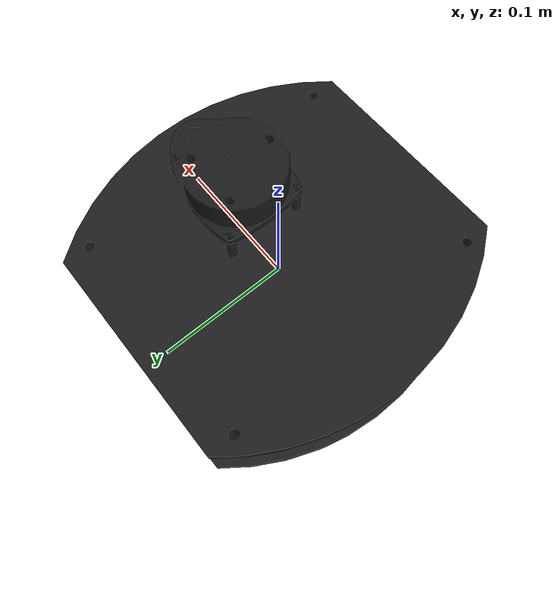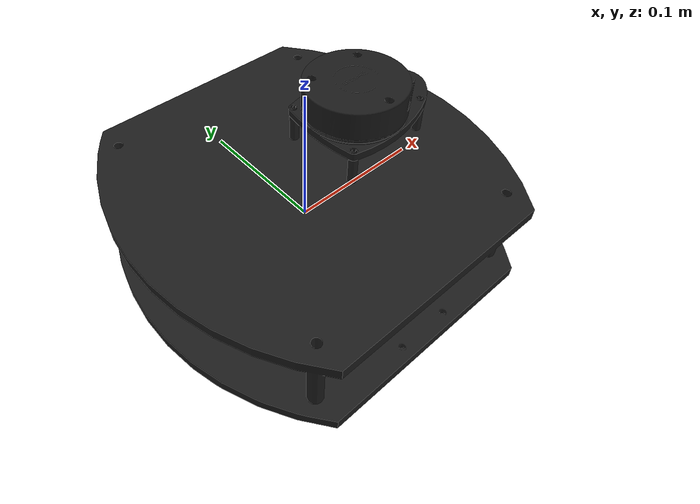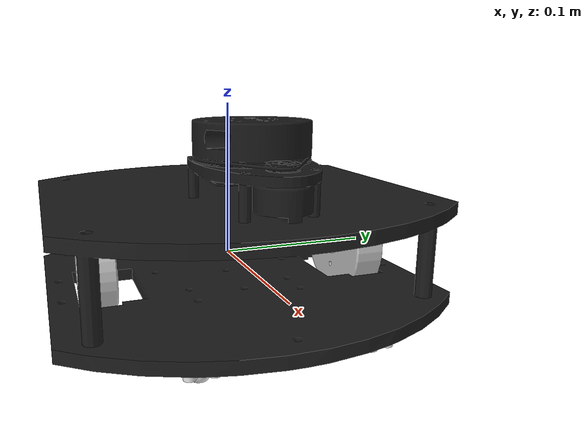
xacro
<?xml version="1.0" encoding="utf-8"?>
<robot
  name="Simplified Assembly">

  <link name="base_link"></link>

  <joint name="chassis_joint" type="fixed">
        <parent link ="base_link"/>
        <child link="chassis_link"/>
        <origin xyz="0 0 -0.0155"/>
    </joint>

  <link
    name="chassis_link">
    <inertial>
      <origin
        xyz="0.00018354 -4.7554E-17 0.026293"
        rpy="0 0 0" />
      <mass
        value="0.82316" />
      <inertia
        ixx="0.0034397"
        ixy="-1.2451E-18"
        ixz="-1.9509E-06"
        iyy="0.0037743"
        iyz="3.903E-21"
        izz="0.0071801" />
    </inertial>
    <visual>
      <origin
        xyz="0 0 0"
        rpy="0 0 0" />
      <geometry>
        <mesh
          filename="file:///home/steph/dev_ws/src/rpibot/meshes/chassis_link.STL" />
      </geometry>
      <material
        name="">
        <color
          rgba="0.11373 0.11373 0.11373 1" />
      </material>
    </visual>
    <collision>
      <origin
        xyz="0 0 0"
        rpy="0 0 0" />
      <geometry>
        <mesh
          filename="file:///home/steph/dev_ws/src/rpibot/meshes/chassis_link.STL" />
      </geometry>
    </collision>
  </link>
  <link
    name="left_wheel_link">
    <inertial>
      <origin
        xyz="1.8238E-18 6.9389E-18 -0.0026884"
        rpy="0 0 0" />
      <mass
        value="0.047296" />
      <inertia
        ixx="2.1191E-05"
        ixy="9.6271E-24"
        ixz="-1.6895E-21"
        iyy="2.1191E-05"
        iyz="-4.4638E-21"
        izz="3.9913E-05" />
    </inertial>
    <visual>
      <origin
        xyz="0 0 0"
        rpy="0 0 0" />
      <geometry>
        <mesh
          filename="file:///home/steph/dev_ws/src/rpibot/meshes/left_wheel_link.STL" />
      </geometry>
      <material
        name="">
        <color
          rgba="0.75294 0.75294 0.75294 1" />
      </material>
    </visual>
    <collision>
      <origin
        xyz="0 0 0"
        rpy="0 0 0" />
      <geometry>
        <mesh
          filename="file:///home/steph/dev_ws/src/rpibot/meshes/left_wheel_link.STL" />
      </geometry>
    </collision>
  </link>
  <joint
    name="left_wheel_joint"
    type="continuous">
    <origin
      xyz="6.2609E-05 0.09 0.0155"
      rpy="-1.5708 0 0" />
    <parent
      link="chassis_link" />
    <child
      link="left_wheel_link" />
    <axis
      xyz="0 0 1" />
    <dynamics
      damping="1"
      friction="1" />
  </joint>
  <link
    name="right_wheel_link">
    <inertial>
      <origin
        xyz="-6.8682E-19 -6.9389E-18 -0.0026884"
        rpy="0 0 0" />
      <mass
        value="0.047296" />
      <inertia
        ixx="2.1191E-05"
        ixy="3.2915E-24"
        ixz="-2.665E-21"
        iyy="2.1191E-05"
        iyz="4.4967E-21"
        izz="3.9913E-05" />
    </inertial>
    <visual>
      <origin
        xyz="0 0 0"
        rpy="0 0 0" />
      <geometry>
        <mesh
          filename="file:///home/steph/dev_ws/src/rpibot/meshes/right_wheel_link.STL" />
      </geometry>
      <material
        name="">
        <color
          rgba="0.75294 0.75294 0.75294 1" />
      </material>
    </visual>
    <collision>
      <origin
        xyz="0 0 0"
        rpy="0 0 0" />
      <geometry>
        <mesh
          filename="file:///home/steph/dev_ws/src/rpibot/meshes/right_wheel_link.STL" />
      </geometry>
    </collision>
  </link>
  <joint
    name="right_wheel_joint"
    type="continuous">
    <origin
      xyz="6.2609E-05 -0.09 0.0155"
      rpy="1.5708 0 0" />
    <parent
      link="chassis_link" />
    <child
      link="right_wheel_link" />
    <axis
      xyz="0 0 -1" />
    <dynamics
      damping="1"
      friction="1" />
  </joint>
  <link
    name="laser_frame">
    <inertial>
      <origin
        xyz="0.005623 0.00037822 -0.010179"
        rpy="0 0 0" />
      <mass
        value="0.14191" />
      <inertia
        ixx="4.5116E-05"
        ixy="-1.0948E-06"
        ixz="3.8297E-06"
        iyy="7.0681E-05"
        iyz="-1.5038E-07"
        izz="0.00010464" />
    </inertial>
    <visual>
      <origin
        xyz="0 0 0"
        rpy="0 0 0" />
      <geometry>
        <mesh
          filename="file:///home/steph/dev_ws/src/rpibot/meshes/laser_frame.STL" />
      </geometry>
      <material
        name="">
        <color
          rgba="0.10196 0.10196 0.10196 1" />
      </material>
    </visual>
    <collision>
      <origin
        xyz="0 0 0"
        rpy="0 0 0" />
      <geometry>
        <mesh
          filename="file:///home/steph/dev_ws/src/rpibot/meshes/laser_frame.STL" />
      </geometry>
    </collision>
  </link>
  <joint
    name="laser_joint"
    type="fixed">
    <origin
      xyz="0.043063 0 0.0986"
      rpy="0 0 0" />
    <parent
      link="chassis_link" />
    <child
      link="laser_frame" />
    <axis
      xyz="0 0 0" />
    <dynamics
      damping="1"
      friction="1" />
  </joint>
  <link
    name="fr_caster_link">
    <inertial>
      <origin
        xyz="2.3592E-16 -2.2898E-16 0.00174"
        rpy="0 0 0" />
      <mass
        value="0.0018558" />
      <inertia
        ixx="4.8888E-08"
        ixy="-7.7048E-24"
        ixz="-7.4938E-24"
        iyy="4.8888E-08"
        iyz="7.4281E-24"
        izz="8.7278E-08" />
    </inertial>
    <visual>
      <origin
        xyz="0 0 0"
        rpy="0 0 0" />
      <geometry>
        <mesh
          filename="file:///home/steph/dev_ws/src/rpibot/meshes/fr_caster_link.STL" />
      </geometry>
      <material
        name="">
        <color
          rgba="0.89412 0.89412 0.89412 1" />
      </material>
    </visual>
    <collision>
      <origin
        xyz="0 0 0"
        rpy="0 0 0" />
      <geometry>
        <mesh
          filename="file:///home/steph/dev_ws/src/rpibot/meshes/fr_caster_link.STL" />
      </geometry>
    </collision>
  </link>
  <joint
    name="fr_caster_joint"
    type="fixed">
    <origin
      xyz="0.10006 -0.05 -0.014"
      rpy="0 0 0" />
    <parent
      link="chassis_link" />
    <child
      link="fr_caster_link" />
    <axis
      xyz="0 0 0" />
    <dynamics
      damping="1E-06"
      friction="1E-06" />
  </joint>
  <link
    name="fl_caster_link">
    <inertial>
      <origin
        xyz="-2.3592E-16 2.3592E-16 0.00174"
        rpy="0 0 0" />
      <mass
        value="0.0018558" />
      <inertia
        ixx="4.8888E-08"
        ixy="-6.3701E-24"
        ixz="-4.0635E-24"
        iyy="4.8888E-08"
        iyz="6.0709E-24"
        izz="8.7278E-08" />
    </inertial>
    <visual>
      <origin
        xyz="0 0 0"
        rpy="0 0 0" />
      <geometry>
        <mesh
          filename="file:///home/steph/dev_ws/src/rpibot/meshes/fl_caster_link.STL" />
      </geometry>
      <material
        name="">
        <color
          rgba="0.89412 0.89412 0.89412 1" />
      </material>
    </visual>
    <collision>
      <origin
        xyz="0 0 0"
        rpy="0 0 0" />
      <geometry>
        <mesh
          filename="file:///home/steph/dev_ws/src/rpibot/meshes/fl_caster_link.STL" />
      </geometry>
    </collision>
  </link>
  <joint
    name="fl_caster_joint"
    type="fixed">
    <origin
      xyz="0.10006 0.05 -0.014"
      rpy="0 0 0" />
    <parent
      link="chassis_link" />
    <child
      link="fl_caster_link" />
    <axis
      xyz="0 0 0" />
    <dynamics
      damping="1E-06"
      friction="1E-06" />
  </joint>
  <link
    name="br_caster_link">
    <inertial>
      <origin
        xyz="2.0817E-16 -2.4286E-16 0.00174"
        rpy="0 0 0" />
      <mass
        value="0.0018558" />
      <inertia
        ixx="4.8888E-08"
        ixy="-1.2961E-23"
        ixz="1.359E-23"
        iyy="4.8888E-08"
        iyz="2.209E-24"
        izz="8.7278E-08" />
    </inertial>
    <visual>
      <origin
        xyz="0 0 0"
        rpy="0 0 0" />
      <geometry>
        <mesh
          filename="file:///home/steph/dev_ws/src/rpibot/meshes/br_caster_link.STL" />
      </geometry>
      <material
        name="">
        <color
          rgba="0.89412 0.89412 0.89412 1" />
      </material>
    </visual>
    <collision>
      <origin
        xyz="0 0 0"
        rpy="0 0 0" />
      <geometry>
        <mesh
          filename="file:///home/steph/dev_ws/src/rpibot/meshes/br_caster_link.STL" />
      </geometry>
    </collision>
  </link>
  <joint
    name="br_caster_joint"
    type="fixed">
    <origin
      xyz="-0.099937 -0.05 -0.014"
      rpy="0 0 0" />
    <parent
      link="chassis_link" />
    <child
      link="br_caster_link" />
    <axis
      xyz="0 0 0" />
    <dynamics
      damping="1E-06"
      friction="1E-06" />
  </joint>
  <link
    name="bl_caster_link">
    <inertial>
      <origin
        xyz="-2.3592E-16 2.2898E-16 0.00174"
        rpy="0 0 0" />
      <mass
        value="0.0018558" />
      <inertia
        ixx="4.8888E-08"
        ixy="-8.5126E-24"
        ixz="7.4999E-24"
        iyy="4.8888E-08"
        iyz="-7.4233E-24"
        izz="8.7278E-08" />
    </inertial>
    <visual>
      <origin
        xyz="0 0 0"
        rpy="0 0 0" />
      <geometry>
        <mesh
          filename="file:///home/steph/dev_ws/src/rpibot/meshes/bl_caster_link.STL" />
      </geometry>
      <material
        name="">
        <color
          rgba="0.89412 0.89412 0.89412 1" />
      </material>
    </visual>
    <collision>
      <origin
        xyz="0 0 0"
        rpy="0 0 0" />
      <geometry>
        <mesh
          filename="file:///home/steph/dev_ws/src/rpibot/meshes/bl_caster_link.STL" />
      </geometry>
    </collision>
  </link>
  <joint
    name="bl_caster_joint"
    type="fixed">
    <origin
      xyz="-0.099937 0.05 -0.014"
      rpy="0 0 0" />
    <parent
      link="chassis_link" />
    <child
      link="bl_caster_link" />
    <axis
      xyz="0 0 0" />
    <dynamics
      damping="1E-06"
      friction="1E-06" />
  </joint>
</robot>
